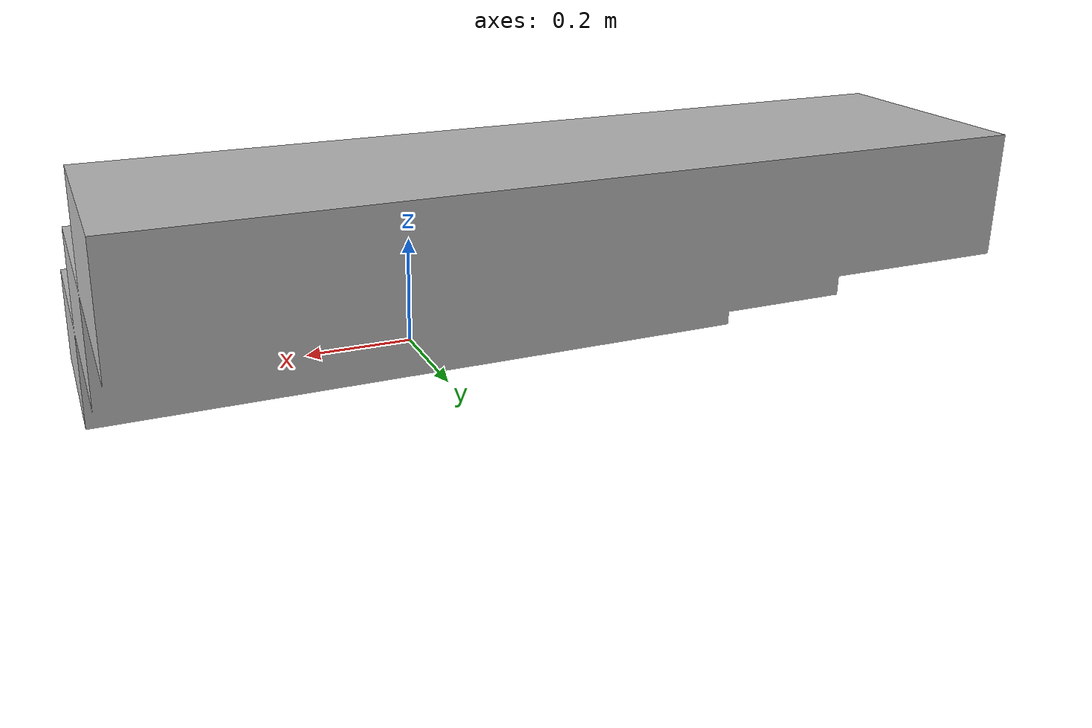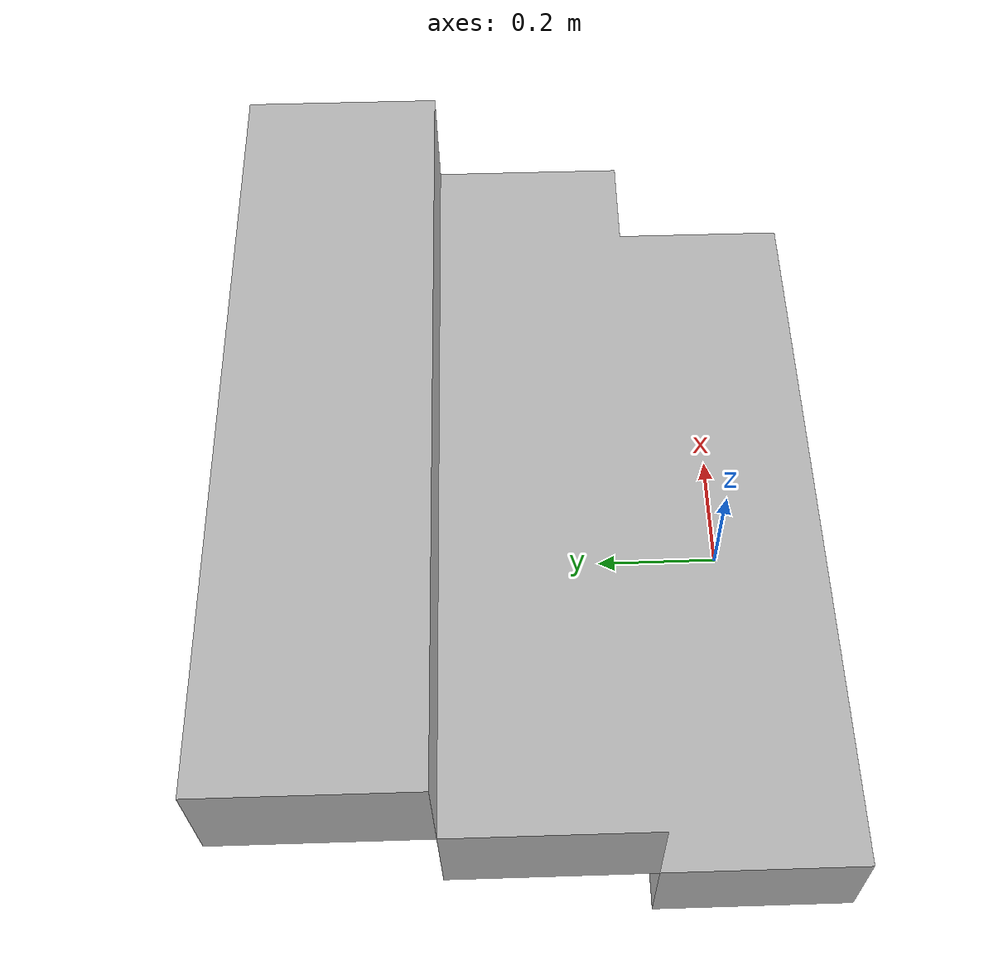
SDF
<?xml version='1.0'?>
<sdf version='1.6'>
  <model name='terrain-ram2022_smallstair'>
    <static>true</static>
    <link name='base_link'>
      <pose frame=''>0 0 0 0 -0 0</pose>
      <inertial>
        <pose frame=''>0.550882 0.468 0.358824 0 -0 0</pose>
        <mass>95.88</mass>
        <inertia>
          <ixx>18.5105</ixx>
          <ixy>6.53965e-15</ixy>
          <ixz>4.72566</ixz>
          <iyy>20.0436</iyy>
          <iyz>-7.38528e-15</iyz>
          <izz>20.3895</izz>
        </inertia>
      </inertial>
      <collision name='base_link_collision'>
        <pose frame=''>0 0 0 0 -0 0</pose>
        <geometry>
          <mesh>
            <scale>1 1 1</scale>
            <uri>model://terrain-ram2022_smallstair/meshes/base_link.STL</uri>
          </mesh>
        </geometry>
        <surface>
            <contact>
              <collide_bitmask>65535</collide_bitmask>
              <ode/>
            </contact>
            <friction>
              <ode>
                <mu>2</mu>
                <mu2>2</mu2>
              </ode>
              <torsional>
                <ode/>
              </torsional>
            </friction>
            <bounce/>
          </surface>
      </collision>
      <visual name='base_link_visual'>
        <pose frame=''>0 0 0 0 -0 0</pose>
        <geometry>
          <mesh>
            <scale>1 1 1</scale>
            <uri>model://terrain-ram2022_smallstair/meshes/base_link.STL</uri>
          </mesh>
        </geometry>
      </visual>
    </link>
  </model>
</sdf>
